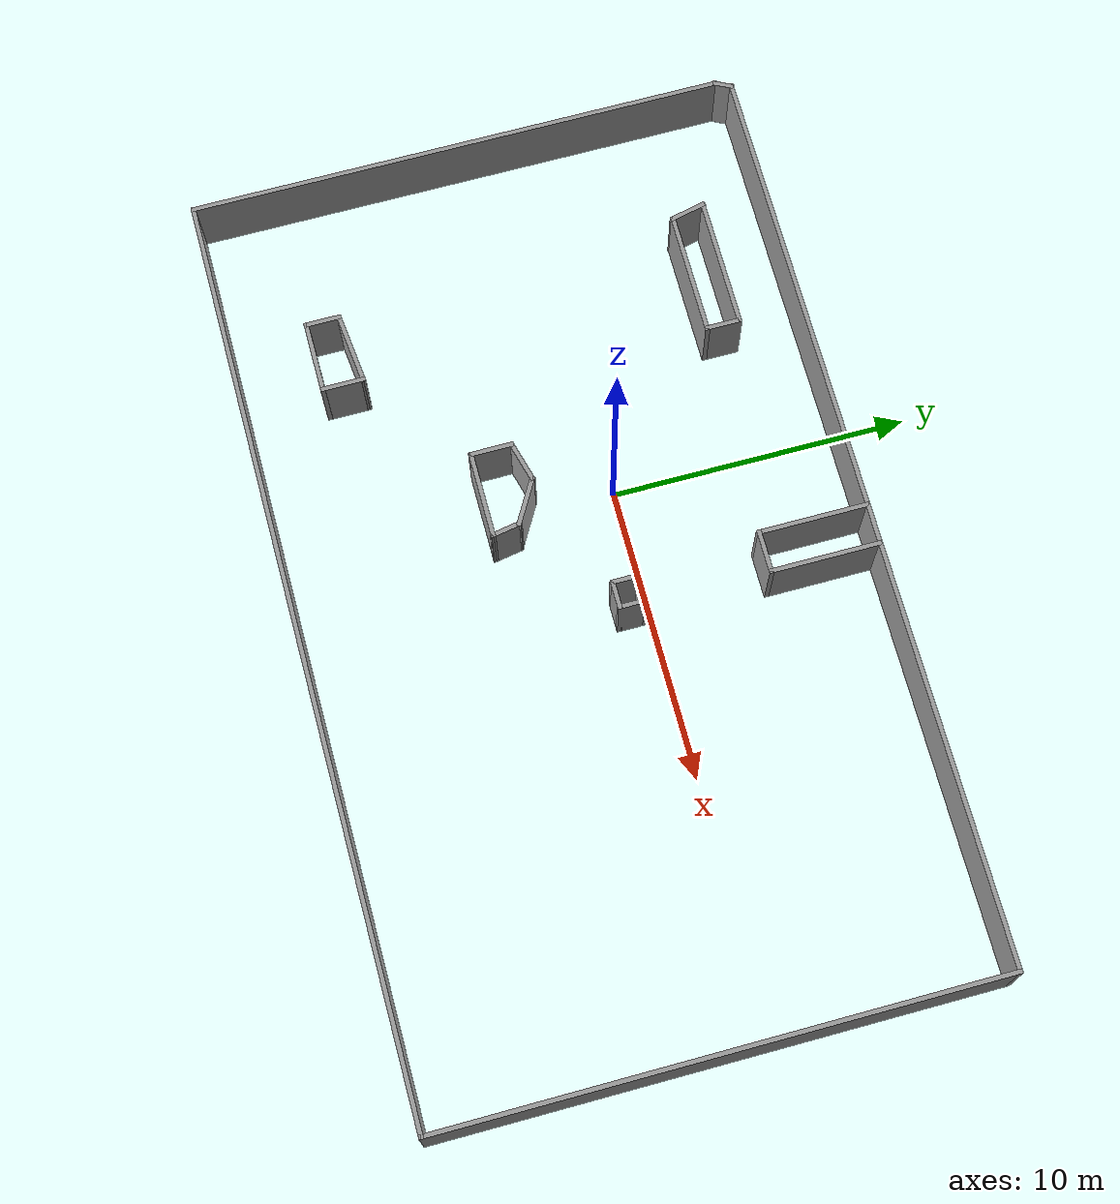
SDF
<?xml version='1.0'?>
<sdf version='1.7'>
  <model name='big20250409'>
    <pose>3.0745 -1.78775 0 0 -0 0</pose>
    <link name='Wall_0'>
      <collision name='Wall_0_Collision'>
        <geometry>
          <box>
            <size>18.25 0.15 2.5</size>
          </box>
        </geometry>
        <pose>0 0 1.25 0 -0 0</pose>
      </collision>
      <visual name='Wall_0_Visual'>
        <pose>0 0 1.25 0 -0 0</pose>
        <geometry>
          <box>
            <size>18.25 0.15 2.5</size>
          </box>
        </geometry>
        <material>
          <script>
            <uri>file://media/materials/scripts/gazebo.material</uri>
            <name>Gazebo/Grey</name>
          </script>
          <ambient>1 1 1 1</ambient>
        </material>
        <meta>
          <layer>0</layer>
        </meta>
      </visual>
      <pose>-15.6622 -0.262811 0 0 -0 -1.5708</pose>
    </link>
    <link name='Wall_1'>
      <collision name='Wall_1_Collision'>
        <geometry>
          <box>
            <size>31.5 0.15 2.5</size>
          </box>
        </geometry>
        <pose>0 0 1.25 0 -0 0</pose>
      </collision>
      <visual name='Wall_1_Visual'>
        <pose>0 0 1.25 0 -0 0</pose>
        <geometry>
          <box>
            <size>31.5 0.15 2.5</size>
          </box>
        </geometry>
        <material>
          <script>
            <uri>file://media/materials/scripts/gazebo.material</uri>
            <name>Gazebo/Grey</name>
          </script>
          <ambient>1 1 1 1</ambient>
        </material>
        <meta>
          <layer>0</layer>
        </meta>
      </visual>
      <pose>0.012811 -9.31281 0 0 -0 0</pose>
    </link>
    <link name='Wall_11'>
      <collision name='Wall_11_Collision'>
        <geometry>
          <box>
            <size>1.75 0.15 2.5</size>
          </box>
        </geometry>
        <pose>0 0 1.25 0 -0 0</pose>
      </collision>
      <visual name='Wall_11_Visual'>
        <pose>0 0 1.25 0 -0 0</pose>
        <geometry>
          <box>
            <size>1.75 0.15 2.5</size>
          </box>
        </geometry>
        <material>
          <script>
            <uri>file://media/materials/scripts/gazebo.material</uri>
            <name>Gazebo/Grey</name>
          </script>
          <ambient>1 1 1 1</ambient>
        </material>
        <meta>
          <layer>0</layer>
        </meta>
      </visual>
      <pose>-2.78197 -1.24845 0 0 -0 2.61799</pose>
    </link>
    <link name='Wall_12'>
      <collision name='Wall_12_Collision'>
        <geometry>
          <box>
            <size>1.5 0.15 2.5</size>
          </box>
        </geometry>
        <pose>0 0 1.25 0 -0 0</pose>
      </collision>
      <visual name='Wall_12_Visual'>
        <pose>0 0 1.25 0 -0 0</pose>
        <geometry>
          <box>
            <size>1.5 0.15 2.5</size>
          </box>
        </geometry>
        <material>
          <script>
            <uri>file://media/materials/scripts/gazebo.material</uri>
            <name>Gazebo/Grey</name>
          </script>
          <ambient>1 1 1 1</ambient>
        </material>
        <meta>
          <layer>0</layer>
        </meta>
      </visual>
      <pose>-4.12679 -1.02315 0 0 -0 -2.87979</pose>
    </link>
    <link name='Wall_13'>
      <collision name='Wall_13_Collision'>
        <geometry>
          <box>
            <size>1.5 0.15 2.5</size>
          </box>
        </geometry>
        <pose>0 0 1.25 0 -0 0</pose>
      </collision>
      <visual name='Wall_13_Visual'>
        <pose>0 0 1.25 0 -0 0</pose>
        <geometry>
          <box>
            <size>1.5 0.15 2.5</size>
          </box>
        </geometry>
        <material>
          <script>
            <uri>file://media/materials/scripts/gazebo.material</uri>
            <name>Gazebo/Grey</name>
          </script>
          <ambient>1 1 1 1</ambient>
        </material>
        <meta>
          <layer>0</layer>
        </meta>
      </visual>
      <pose>-4.77879 -1.87285 0 0 -0 -1.5708</pose>
    </link>
    <link name='Wall_14'>
      <collision name='Wall_14_Collision'>
        <geometry>
          <box>
            <size>3 0.15 2.5</size>
          </box>
        </geometry>
        <pose>0 0 1.25 0 -0 0</pose>
      </collision>
      <visual name='Wall_14_Visual'>
        <pose>0 0 1.25 0 -0 0</pose>
        <geometry>
          <box>
            <size>3 0.15 2.5</size>
          </box>
        </geometry>
        <material>
          <script>
            <uri>file://media/materials/scripts/gazebo.material</uri>
            <name>Gazebo/Grey</name>
          </script>
          <ambient>1 1 1 1</ambient>
        </material>
        <meta>
          <layer>0</layer>
        </meta>
      </visual>
      <pose>-3.35378 -2.54785 0 0 -0 0</pose>
    </link>
    <link name='Wall_15'>
      <collision name='Wall_15_Collision'>
        <geometry>
          <box>
            <size>1.06359 0.15 2.5</size>
          </box>
        </geometry>
        <pose>0 0 1.25 0 -0 0</pose>
      </collision>
      <visual name='Wall_15_Visual'>
        <pose>0 0 1.25 0 -0 0</pose>
        <geometry>
          <box>
            <size>1.06359 0.15 2.5</size>
          </box>
        </geometry>
        <material>
          <script>
            <uri>file://media/materials/scripts/gazebo.material</uri>
            <name>Gazebo/Grey</name>
          </script>
          <ambient>1 1 1 1</ambient>
        </material>
        <meta>
          <layer>0</layer>
        </meta>
      </visual>
      <pose>-2.00896 -2.09815 0 0 -0 1.74724</pose>
    </link>
    <link name='Wall_17'>
      <collision name='Wall_17_Collision'>
        <geometry>
          <box>
            <size>4.5 0.15 2.5</size>
          </box>
        </geometry>
        <pose>0 0 1.25 0 -0 0</pose>
      </collision>
      <visual name='Wall_17_Visual'>
        <pose>0 0 1.25 0 -0 0</pose>
        <geometry>
          <box>
            <size>4.5 0.15 2.5</size>
          </box>
        </geometry>
        <material>
          <script>
            <uri>file://media/materials/scripts/gazebo.material</uri>
            <name>Gazebo/Grey</name>
          </script>
          <ambient>1 1 1 1</ambient>
        </material>
        <meta>
          <layer>0</layer>
        </meta>
      </visual>
      <pose>-9.22358 7.12596 0 0 -0 0</pose>
    </link>
    <link name='Wall_18'>
      <collision name='Wall_18_Collision'>
        <geometry>
          <box>
            <size>1.25 0.15 2.5</size>
          </box>
        </geometry>
        <pose>0 0 1.25 0 -0 0</pose>
      </collision>
      <visual name='Wall_18_Visual'>
        <pose>0 0 1.25 0 -0 0</pose>
        <geometry>
          <box>
            <size>1.25 0.15 2.5</size>
          </box>
        </geometry>
        <material>
          <script>
            <uri>file://media/materials/scripts/gazebo.material</uri>
            <name>Gazebo/Grey</name>
          </script>
          <ambient>1 1 1 1</ambient>
        </material>
        <meta>
          <layer>0</layer>
        </meta>
      </visual>
      <pose>-7.04858 6.57596 0 0 -0 -1.5708</pose>
    </link>
    <link name='Wall_19'>
      <collision name='Wall_19_Collision'>
        <geometry>
          <box>
            <size>4.25 0.15 2.5</size>
          </box>
        </geometry>
        <pose>0 0 1.25 0 -0 0</pose>
      </collision>
      <visual name='Wall_19_Visual'>
        <pose>0 0 1.25 0 -0 0</pose>
        <geometry>
          <box>
            <size>4.25 0.15 2.5</size>
          </box>
        </geometry>
        <material>
          <script>
            <uri>file://media/materials/scripts/gazebo.material</uri>
            <name>Gazebo/Grey</name>
          </script>
          <ambient>1 1 1 1</ambient>
        </material>
        <meta>
          <layer>0</layer>
        </meta>
      </visual>
      <pose>-9.09858 6.02596 0 0 -0 3.14159</pose>
    </link>
    <link name='Wall_2'>
      <collision name='Wall_2_Collision'>
        <geometry>
          <box>
            <size>18.75 0.15 2.5</size>
          </box>
        </geometry>
        <pose>0 0 1.25 0 -0 0</pose>
      </collision>
      <visual name='Wall_2_Visual'>
        <pose>0 0 1.25 0 -0 0</pose>
        <geometry>
          <box>
            <size>18.75 0.15 2.5</size>
          </box>
        </geometry>
        <material>
          <script>
            <uri>file://media/materials/scripts/gazebo.material</uri>
            <name>Gazebo/Grey</name>
          </script>
          <ambient>1 1 1 1</ambient>
        </material>
        <meta>
          <layer>0</layer>
        </meta>
      </visual>
      <pose>15.6878 -0.012811 0 0 -0 1.5708</pose>
    </link>
    <link name='Wall_20'>
      <collision name='Wall_20_Collision'>
        <geometry>
          <box>
            <size>1.27805 0.15 2.5</size>
          </box>
        </geometry>
        <pose>0 0 1.25 0 -0 0</pose>
      </collision>
      <visual name='Wall_20_Visual'>
        <pose>0 0 1.25 0 -0 0</pose>
        <geometry>
          <box>
            <size>1.27805 0.15 2.5</size>
          </box>
        </geometry>
        <material>
          <script>
            <uri>file://media/materials/scripts/gazebo.material</uri>
            <name>Gazebo/Grey</name>
          </script>
          <ambient>1 1 1 1</ambient>
        </material>
        <meta>
          <layer>0</layer>
        </meta>
      </visual>
      <pose>-11.2736 6.57596 0 0 -0 1.79427</pose>
    </link>
    <link name='Wall_22'>
      <collision name='Wall_22_Collision'>
        <geometry>
          <box>
            <size>3.75 0.15 2.5</size>
          </box>
        </geometry>
        <pose>0 0 1.25 0 -0 0</pose>
      </collision>
      <visual name='Wall_22_Visual'>
        <pose>0 0 1.25 0 -0 0</pose>
        <geometry>
          <box>
            <size>3.75 0.15 2.5</size>
          </box>
        </geometry>
        <material>
          <script>
            <uri>file://media/materials/scripts/gazebo.material</uri>
            <name>Gazebo/Grey</name>
          </script>
          <ambient>1 1 1 1</ambient>
        </material>
        <meta>
          <layer>0</layer>
        </meta>
      </visual>
      <pose>1.54903 7.46606 0 0 -0 -1.5708</pose>
    </link>
    <link name='Wall_23'>
      <collision name='Wall_23_Collision'>
        <geometry>
          <box>
            <size>1.5 0.15 2.5</size>
          </box>
        </geometry>
        <pose>0 0 1.25 0 -0 0</pose>
      </collision>
      <visual name='Wall_23_Visual'>
        <pose>0 0 1.25 0 -0 0</pose>
        <geometry>
          <box>
            <size>1.5 0.15 2.5</size>
          </box>
        </geometry>
        <material>
          <script>
            <uri>file://media/materials/scripts/gazebo.material</uri>
            <name>Gazebo/Grey</name>
          </script>
          <ambient>1 1 1 1</ambient>
        </material>
        <meta>
          <layer>0</layer>
        </meta>
      </visual>
      <pose>0.874025 5.66606 0 0 -0 3.14159</pose>
    </link>
    <link name='Wall_24'>
      <collision name='Wall_24_Collision'>
        <geometry>
          <box>
            <size>3.75 0.15 2.5</size>
          </box>
        </geometry>
        <pose>0 0 1.25 0 -0 0</pose>
      </collision>
      <visual name='Wall_24_Visual'>
        <pose>0 0 1.25 0 -0 0</pose>
        <geometry>
          <box>
            <size>3.75 0.15 2.5</size>
          </box>
        </geometry>
        <material>
          <script>
            <uri>file://media/materials/scripts/gazebo.material</uri>
            <name>Gazebo/Grey</name>
          </script>
          <ambient>1 1 1 1</ambient>
        </material>
        <meta>
          <layer>0</layer>
        </meta>
      </visual>
      <pose>0.199025 7.46606 0 0 -0 1.5708</pose>
    </link>
    <link name='Wall_26'>
      <collision name='Wall_26_Collision'>
        <geometry>
          <box>
            <size>1 0.15 2.5</size>
          </box>
        </geometry>
        <pose>0 0 1.25 0 -0 0</pose>
      </collision>
      <visual name='Wall_26_Visual'>
        <pose>0 0 1.25 0 -0 0</pose>
        <geometry>
          <box>
            <size>1 0.15 2.5</size>
          </box>
        </geometry>
        <material>
          <script>
            <uri>file://media/materials/scripts/gazebo.material</uri>
            <name>Gazebo/Grey</name>
          </script>
          <ambient>1 1 1 1</ambient>
        </material>
        <meta>
          <layer>0</layer>
        </meta>
      </visual>
      <pose>0.58598 1.1367 0 0 -0 -1.5708</pose>
    </link>
    <link name='Wall_27'>
      <collision name='Wall_27_Collision'>
        <geometry>
          <box>
            <size>1 0.15 2.5</size>
          </box>
        </geometry>
        <pose>0 0 1.25 0 -0 0</pose>
      </collision>
      <visual name='Wall_27_Visual'>
        <pose>0 0 1.25 0 -0 0</pose>
        <geometry>
          <box>
            <size>1 0.15 2.5</size>
          </box>
        </geometry>
        <material>
          <script>
            <uri>file://media/materials/scripts/gazebo.material</uri>
            <name>Gazebo/Grey</name>
          </script>
          <ambient>1 1 1 1</ambient>
        </material>
        <meta>
          <layer>0</layer>
        </meta>
      </visual>
      <pose>1.01098 0.711704 0 0 -0 0</pose>
    </link>
    <link name='Wall_28'>
      <collision name='Wall_28_Collision'>
        <geometry>
          <box>
            <size>1 0.15 2.5</size>
          </box>
        </geometry>
        <pose>0 0 1.25 0 -0 0</pose>
      </collision>
      <visual name='Wall_28_Visual'>
        <pose>0 0 1.25 0 -0 0</pose>
        <geometry>
          <box>
            <size>1 0.15 2.5</size>
          </box>
        </geometry>
        <material>
          <script>
            <uri>file://media/materials/scripts/gazebo.material</uri>
            <name>Gazebo/Grey</name>
          </script>
          <ambient>1 1 1 1</ambient>
        </material>
        <meta>
          <layer>0</layer>
        </meta>
      </visual>
      <pose>1.43598 1.1367 0 0 -0 1.5708</pose>
    </link>
    <link name='Wall_29'>
      <collision name='Wall_29_Collision'>
        <geometry>
          <box>
            <size>1 0.15 2.5</size>
          </box>
        </geometry>
        <pose>0 0 1.25 0 -0 0</pose>
      </collision>
      <visual name='Wall_29_Visual'>
        <pose>0 0 1.25 0 -0 0</pose>
        <geometry>
          <box>
            <size>1 0.15 2.5</size>
          </box>
        </geometry>
        <material>
          <script>
            <uri>file://media/materials/scripts/gazebo.material</uri>
            <name>Gazebo/Grey</name>
          </script>
          <ambient>1 1 1 1</ambient>
        </material>
        <meta>
          <layer>0</layer>
        </meta>
      </visual>
      <pose>1.01098 1.5617 0 0 -0 3.14159</pose>
    </link>
    <link name='Wall_3'>
      <collision name='Wall_3_Collision'>
        <geometry>
          <box>
            <size>31.25 0.15 2.5</size>
          </box>
        </geometry>
        <pose>0 0 1.25 0 -0 0</pose>
      </collision>
      <visual name='Wall_3_Visual'>
        <pose>0 0 1.25 0 -0 0</pose>
        <geometry>
          <box>
            <size>31.25 0.15 2.5</size>
          </box>
        </geometry>
        <material>
          <script>
            <uri>file://media/materials/scripts/gazebo.material</uri>
            <name>Gazebo/Grey</name>
          </script>
          <ambient>1 1 1 1</ambient>
        </material>
        <meta>
          <layer>0</layer>
        </meta>
      </visual>
      <pose>0.137811 9.28719 0 0 -0 3.14159</pose>
    </link>
    <link name='Wall_4'>
      <collision name='Wall_4_Collision'>
        <geometry>
          <box>
            <size>0.709017 0.15 2.5</size>
          </box>
        </geometry>
        <pose>0 0 1.25 0 -0 0</pose>
      </collision>
      <visual name='Wall_4_Visual'>
        <pose>0 0 1.25 0 -0 0</pose>
        <geometry>
          <box>
            <size>0.709017 0.15 2.5</size>
          </box>
        </geometry>
        <material>
          <script>
            <uri>file://media/materials/scripts/gazebo.material</uri>
            <name>Gazebo/Grey</name>
          </script>
          <ambient>1 1 1 1</ambient>
        </material>
        <meta>
          <layer>0</layer>
        </meta>
      </visual>
      <pose>-15.5372 9.03719 0 0 -0 -2.03444</pose>
    </link>
    <link name='Wall_6'>
      <collision name='Wall_6_Collision'>
        <geometry>
          <box>
            <size>1.5 0.15 2.5</size>
          </box>
        </geometry>
        <pose>0 0 1.25 0 -0 0</pose>
      </collision>
      <visual name='Wall_6_Visual'>
        <pose>0 0 1.25 0 -0 0</pose>
        <geometry>
          <box>
            <size>1.5 0.15 2.5</size>
          </box>
        </geometry>
        <material>
          <script>
            <uri>file://media/materials/scripts/gazebo.material</uri>
            <name>Gazebo/Grey</name>
          </script>
          <ambient>1 1 1 1</ambient>
        </material>
        <meta>
          <layer>0</layer>
        </meta>
      </visual>
      <pose>-8.24193 -5.96162 0 0 -0 -1.5708</pose>
    </link>
    <link name='Wall_7'>
      <collision name='Wall_7_Collision'>
        <geometry>
          <box>
            <size>2.5 0.15 2.5</size>
          </box>
        </geometry>
        <pose>0 0 1.25 0 -0 0</pose>
      </collision>
      <visual name='Wall_7_Visual'>
        <pose>0 0 1.25 0 -0 0</pose>
        <geometry>
          <box>
            <size>2.5 0.15 2.5</size>
          </box>
        </geometry>
        <material>
          <script>
            <uri>file://media/materials/scripts/gazebo.material</uri>
            <name>Gazebo/Grey</name>
          </script>
          <ambient>1 1 1 1</ambient>
        </material>
        <meta>
          <layer>0</layer>
        </meta>
      </visual>
      <pose>-9.41693 -6.63662 0 0 -0 3.14159</pose>
    </link>
    <link name='Wall_8'>
      <collision name='Wall_8_Collision'>
        <geometry>
          <box>
            <size>1.25 0.15 2.5</size>
          </box>
        </geometry>
        <pose>0 0 1.25 0 -0 0</pose>
      </collision>
      <visual name='Wall_8_Visual'>
        <pose>0 0 1.25 0 -0 0</pose>
        <geometry>
          <box>
            <size>1.25 0.15 2.5</size>
          </box>
        </geometry>
        <material>
          <script>
            <uri>file://media/materials/scripts/gazebo.material</uri>
            <name>Gazebo/Grey</name>
          </script>
          <ambient>1 1 1 1</ambient>
        </material>
        <meta>
          <layer>0</layer>
        </meta>
      </visual>
      <pose>-10.5919 -6.08662 0 0 -0 1.5708</pose>
    </link>
    <link name='Wall_9'>
      <collision name='Wall_9_Collision'>
        <geometry>
          <box>
            <size>2.51326 0.15 2.5</size>
          </box>
        </geometry>
        <pose>0 0 1.25 0 -0 0</pose>
      </collision>
      <visual name='Wall_9_Visual'>
        <pose>0 0 1.25 0 -0 0</pose>
        <geometry>
          <box>
            <size>2.51326 0.15 2.5</size>
          </box>
        </geometry>
        <material>
          <script>
            <uri>file://media/materials/scripts/gazebo.material</uri>
            <name>Gazebo/Grey</name>
          </script>
          <ambient>1 1 1 1</ambient>
        </material>
        <meta>
          <layer>0</layer>
        </meta>
      </visual>
      <pose>-9.41693 -5.41162 0 0 -0 0.105984</pose>
    </link>
    <static>1</static>
  </model>
</sdf>
